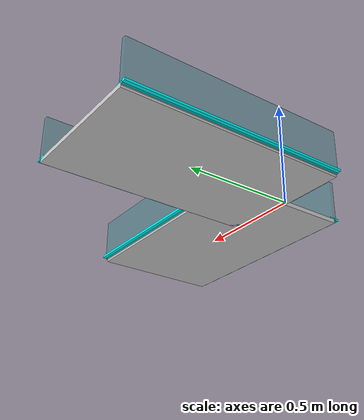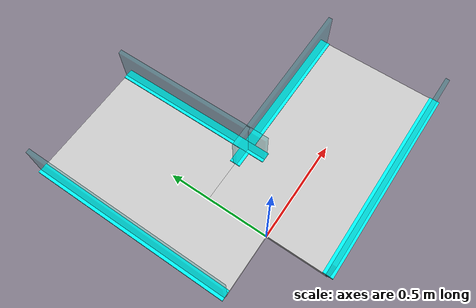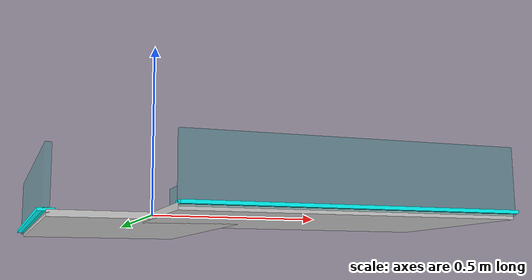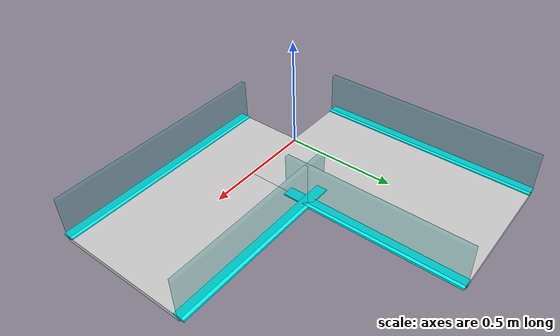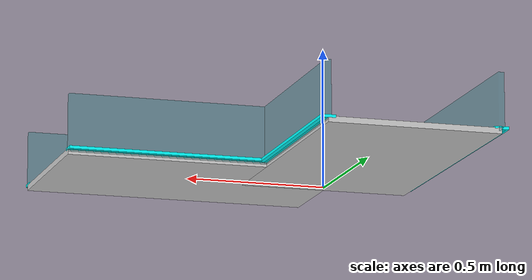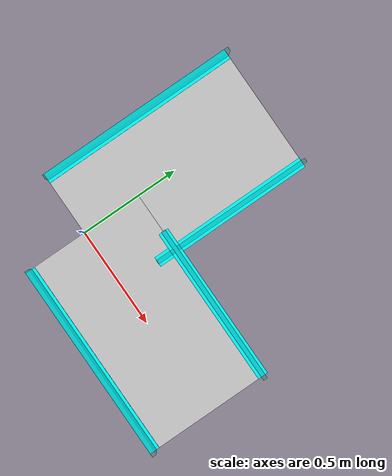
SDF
<?xml version="1.0" ?>
<sdf version="1.8">
  <model name="delivery_track_corner">
    <static>true</static>
    <link name="link">
      <!-- L-Shaped Floor (0.6m wide) -->
      <visual name="floor_h">
        <pose>0.5 0 0 0 0 0</pose>
        <geometry><box><size>1.0 0.6 0.02</size></box></geometry>
        <material><ambient>0.8 0.8 0.8 1</ambient><diffuse>0.8 0.8 0.8 1</diffuse></material>
      </visual>
      <visual name="floor_v">
        <pose>0 0.5 0 0 0 0</pose>
        <geometry><box><size>0.6 1.0 0.02</size></box></geometry>
        <material><ambient>0.8 0.8 0.8 1</ambient><diffuse>0.8 0.8 0.8 1</diffuse></material>
      </visual>

      <!-- Outer Glass Walls (The outer elbow) -->
      <visual name="glass_outer_h">
        <pose>0.5 -0.3 0.1 0 0 0</pose>
        <geometry><box><size>1.0 0.02 0.2</size></box></geometry>
        <material><ambient>0 0.5 0.5 0.3</ambient><diffuse>0 0.5 0.5 0.3</diffuse></material>
      </visual>
      <visual name="glass_outer_v">
        <pose>-0.3 0.5 0.1 0 0 0</pose>
        <geometry><box><size>0.02 1.0 0.2</size></box></geometry>
        <material><ambient>0 0.5 0.5 0.3</ambient><diffuse>0 0.5 0.5 0.3</diffuse></material>
      </visual>

      <!-- Inner Glass Walls (The inner elbow) -->
      <visual name="glass_inner_h">
        <pose>0.6 0.3 0.1 0 0 0</pose>
        <geometry><box><size>0.8 0.02 0.2</size></box></geometry>
        <material><ambient>0 0.5 0.5 0.3</ambient><diffuse>0 0.5 0.5 0.3</diffuse></material>
      </visual>
      <visual name="glass_inner_v">
        <pose>0.3 0.6 0.1 0 0 0</pose>
        <geometry><box><size>0.02 0.8 0.2</size></box></geometry>
        <material><ambient>0 0.5 0.5 0.3</ambient><diffuse>0 0.5 0.5 0.3</diffuse></material>
      </visual>

      <!-- Neon Accents Outer -->
      <visual name="neon_outer_h">
         <pose>0.5 -0.3 0.01 0 0 0</pose>
         <geometry><box><size>1.0 0.05 0.01</size></box></geometry>
         <material><ambient>0 1 1 1</ambient><diffuse>0 1 1 1</diffuse><emissive>0 1 1 1</emissive></material>
      </visual>
      <visual name="neon_outer_v">
         <pose>-0.3 0.5 0.01 0 0 0</pose>
         <geometry><box><size>0.05 1.0 0.01</size></box></geometry>
         <material><ambient>0 1 1 1</ambient><diffuse>0 1 1 1</diffuse><emissive>0 1 1 1</emissive></material>
      </visual>

      <!-- Neon Accents Inner -->
      <visual name="neon_inner_h">
         <pose>0.6 0.3 0.01 0 0 0</pose>
         <geometry><box><size>0.8 0.05 0.01</size></box></geometry>
         <material><ambient>0 1 1 1</ambient><diffuse>0 1 1 1</diffuse><emissive>0 1 1 1</emissive></material>
      </visual>
      <visual name="neon_inner_v">
         <pose>0.3 0.6 0.01 0 0 0</pose>
         <geometry><box><size>0.05 0.8 0.01</size></box></geometry>
         <material><ambient>0 1 1 1</ambient><diffuse>0 1 1 1</diffuse><emissive>0 1 1 1</emissive></material>
      </visual>

      <collision name="c1"><pose>0.5 0 0 0 0 0</pose><geometry><box><size>1.0 0.6 0.02</size></box></geometry></collision>
      <collision name="c2"><pose>0 0.5 0 0 0 0</pose><geometry><box><size>0.6 1.0 0.02</size></box></geometry></collision>
    </link>
  </model>
</sdf>
